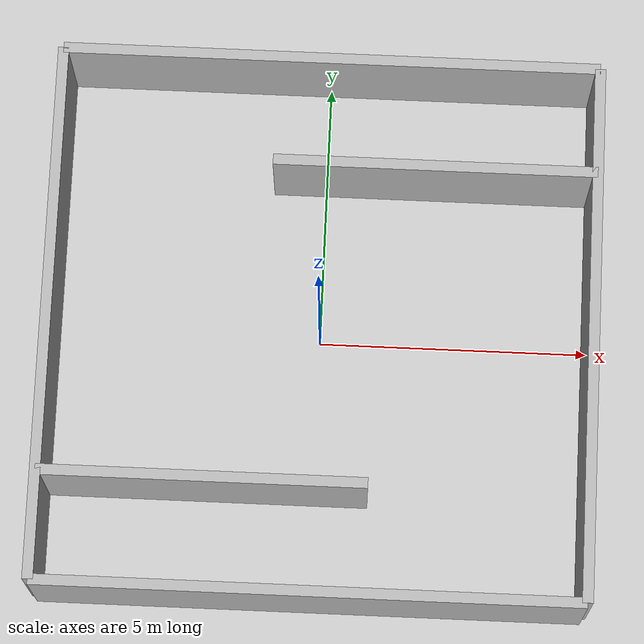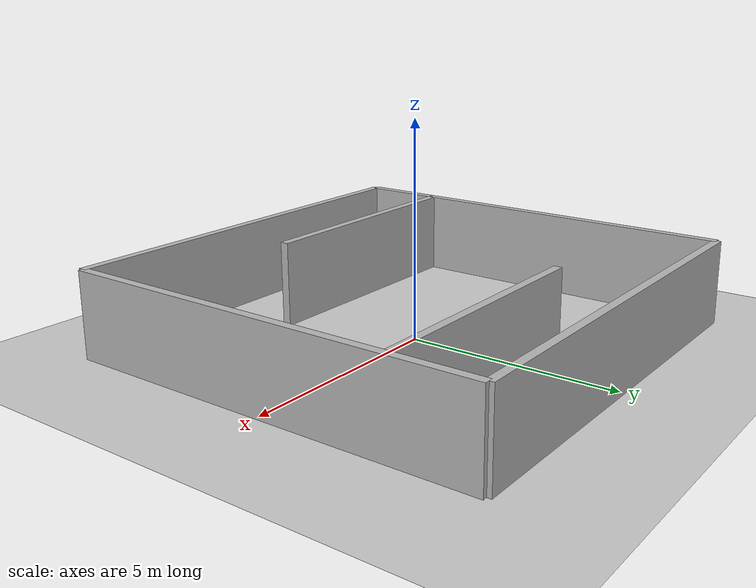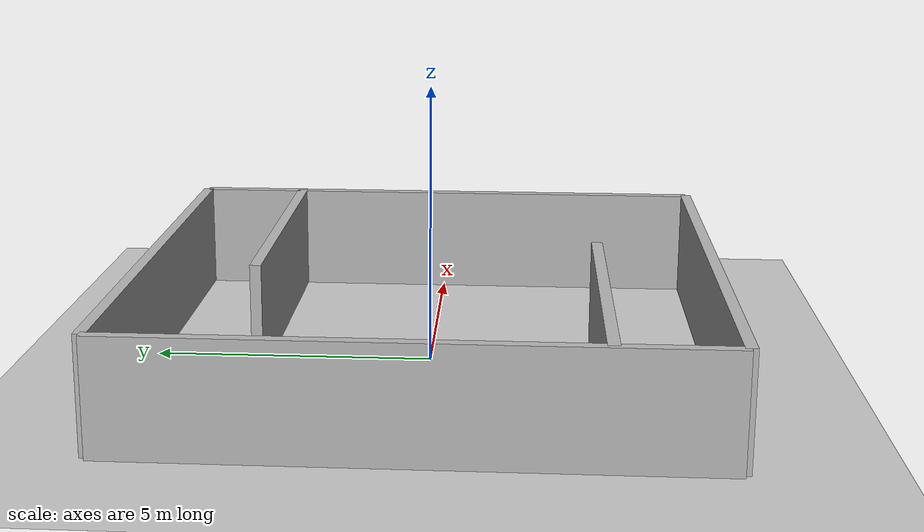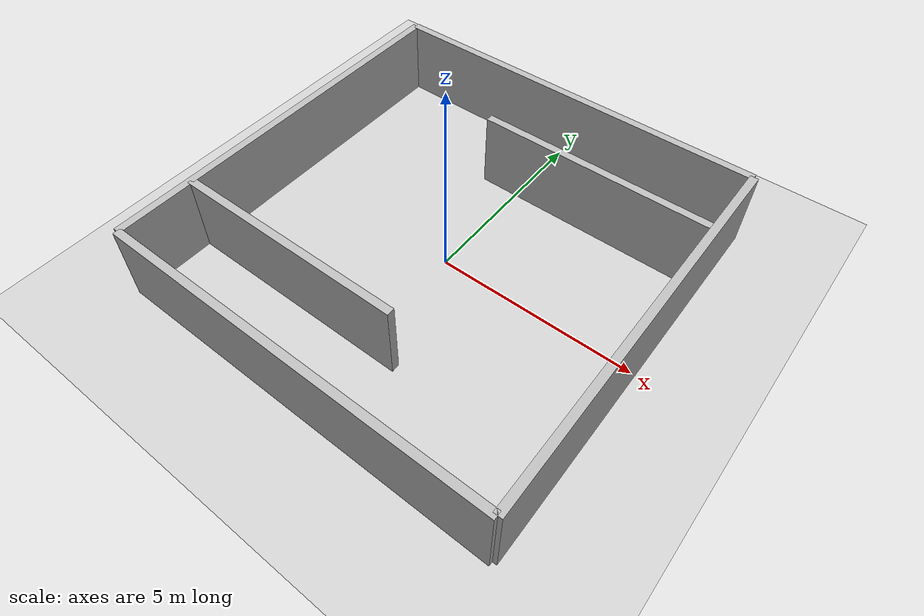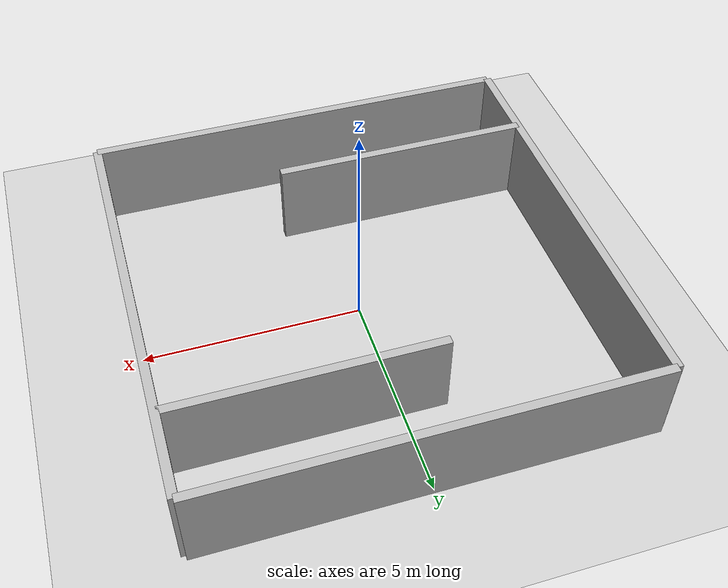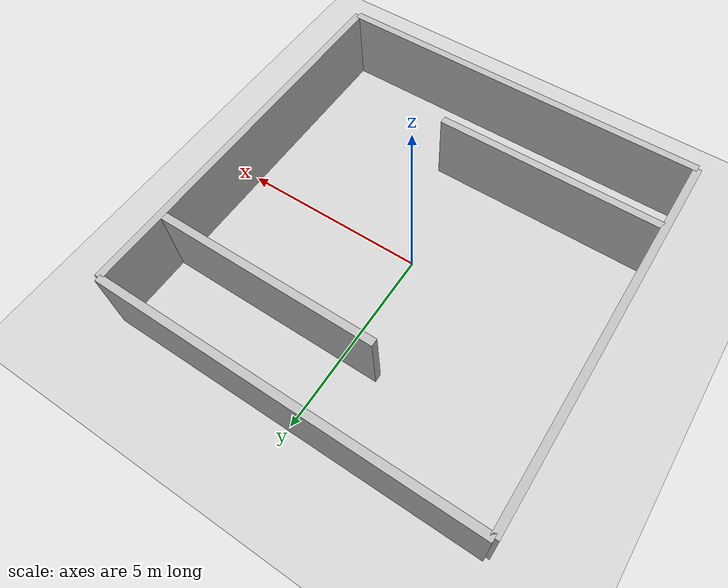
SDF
<?xml version="1.0" ?>
<sdf version="1.7">
    <world name="empty_world">
        <light type="directional" name="sun">
            <cast_shadows>true</cast_shadows>
            <pose>0 0 10 0 0 0</pose>
            <diffuse>0.8 0.8 0.8 1</diffuse>
            <specular>0.2 0.2 0.2 1</specular>
            <attenuation>
                <range>1000</range>
                <constant>0.9</constant>
                <linear>0.01</linear>
                <quadratic>0.001</quadratic>
            </attenuation>
            <direction>-0.5 0.1 -0.9</direction>
        </light>

        <model name="ground_plane">
            <static>true</static>
           <link name="link">
                <collision name="collision">
                    <geometry>
                        <plane>
                            <normal>0 0 1</normal>
                        </plane>
                    </geometry>
                </collision>
                <visual name="visual">
                    <geometry>
                        <plane>
                            <normal>0 0 1</normal>
                            <size>100 100</size>
                        </plane>
                    </geometry>
                    <material>
                        <ambient>0.8 0.8 0.8 1</ambient>
                        <diffuse>0.8 0.8 0.8 1</diffuse>
                        <specular>0.8 0.8 0.8 1</specular>
                    </material>
                </visual>
            </link>
        </model>

            <!-- Four Walls -->
    <model name="wall1">
      <static>true</static>
      <link name="link">
        <collision name="collision">
          <geometry>
            <box><size>10 0.2 2</size></box>
          </geometry>
        </collision>
        <visual name="visual">
          <geometry>
            <box><size>10 0.2 2</size></box>
          </geometry>
        </visual>
      </link>
      <pose>0 -5 1 0 0 0</pose>
    </model>

    <model name="wall2">
      <static>true</static>
      <link name="link">
        <collision name="collision">
          <geometry>
            <box><size>10 0.2 2</size></box>
          </geometry>
        </collision>
        <visual name="visual">
          <geometry>
            <box><size>10 0.2 2</size></box>
          </geometry>
        </visual>
      </link>
      <pose>0 5 1 0 0 0</pose>
    </model>

    <model name="wall3">
      <static>true</static>
      <link name="link">
        <collision name="collision">
          <geometry>
            <box><size>0.2 10 2</size></box>
          </geometry>
        </collision>
        <visual name="visual">
          <geometry>
            <box><size>0.2 10 2</size></box>
          </geometry>
        </visual>
      </link>
      <pose>-5 0 1 0 0 0</pose>
    </model>

    <model name="wall4">
      <static>true</static>
      <link name="link">
        <collision name="collision">
          <geometry>
            <box><size>0.2 10 2</size></box>
          </geometry>
        </collision>
        <visual name="visual">
          <geometry>
            <box><size>0.2 10 2</size></box>
          </geometry>
        </visual>
      </link>
      <pose>5 0 1 0 0 0</pose>
    </model>

    <model name="partition1">
      <static>true</static>
      <link name="link">
        <collision name="collision">
          <geometry>
            <box><size>6 0.2 2</size></box>
          </geometry>
        </collision>
        <visual name="visual">
          <geometry>
            <box><size>6 0.2 2</size></box>
          </geometry>
        </visual>
      </link>
      <pose>2 3 1 0 0 0</pose>
    </model>

        <model name="partition2">
      <static>true</static>
      <link name="link">
        <collision name="collision">
          <geometry>
            <box><size>6 0.2 2</size></box>
          </geometry>
        </collision>
        <visual name="visual">
          <geometry>
            <box><size>6 0.2 2</size></box>
          </geometry>
        </visual>
      </link>
      <pose>-2 -3 1 0 0 0</pose>
    </model>

    </world>
</sdf>
